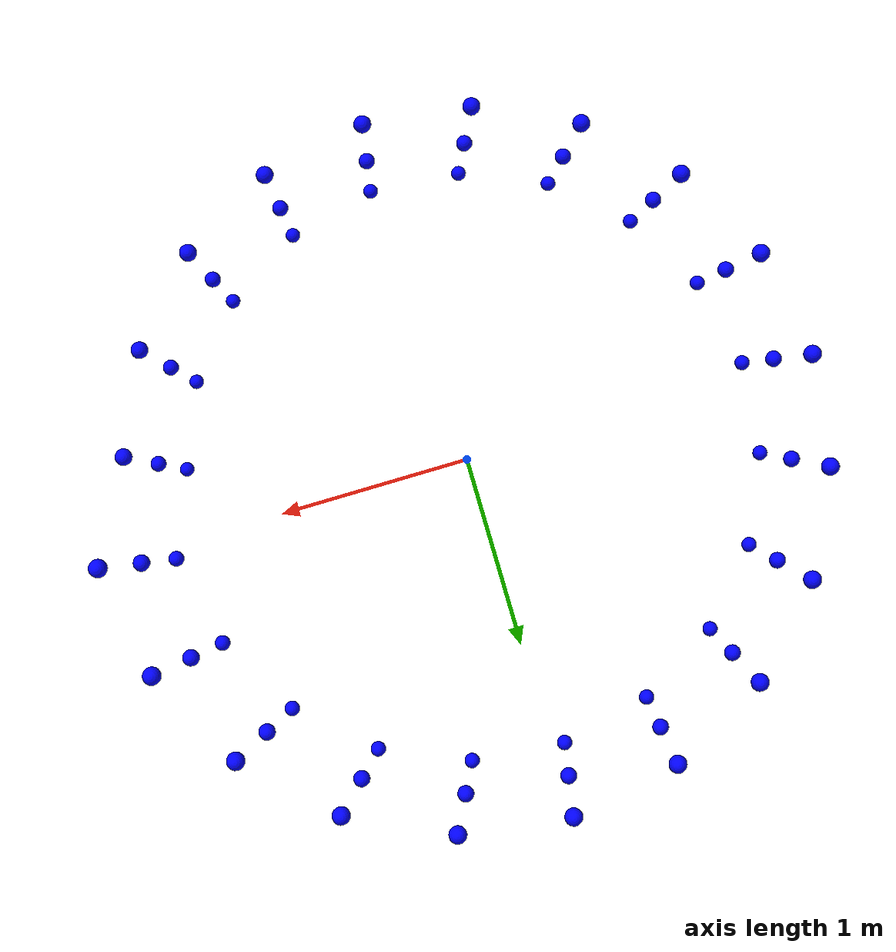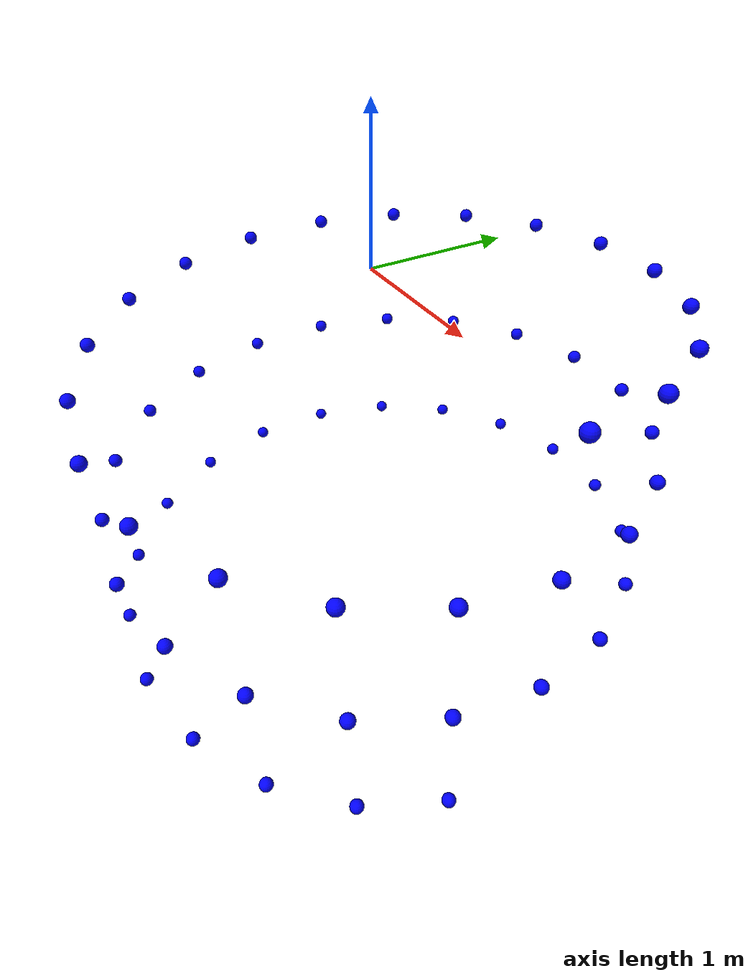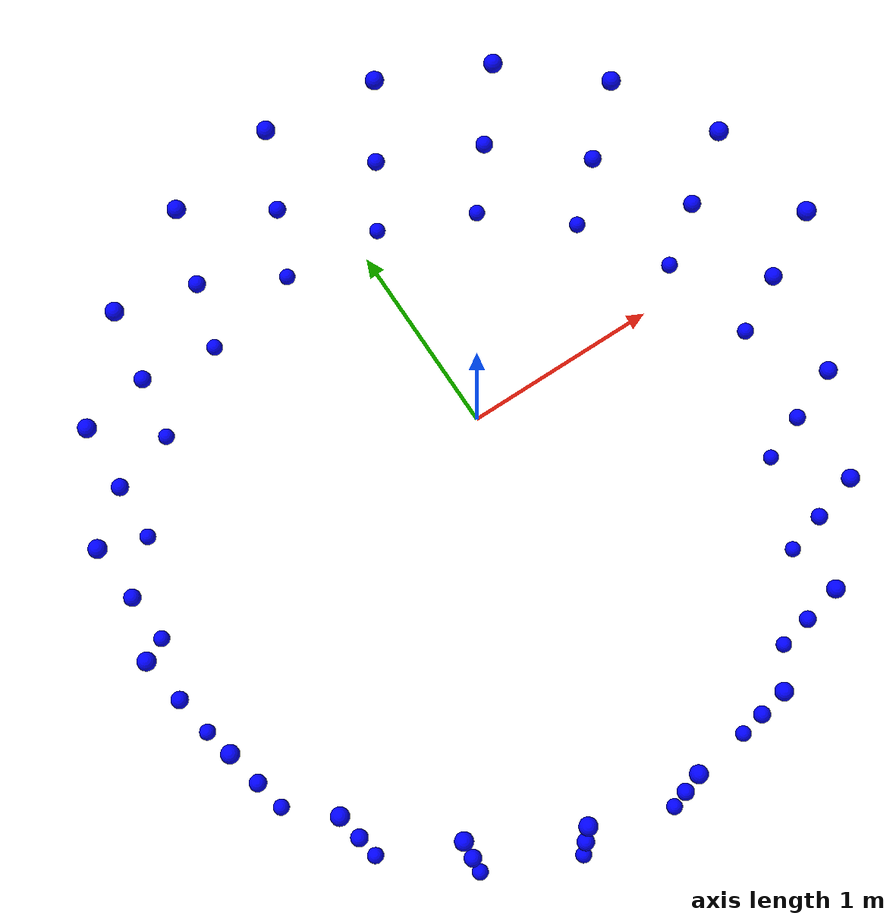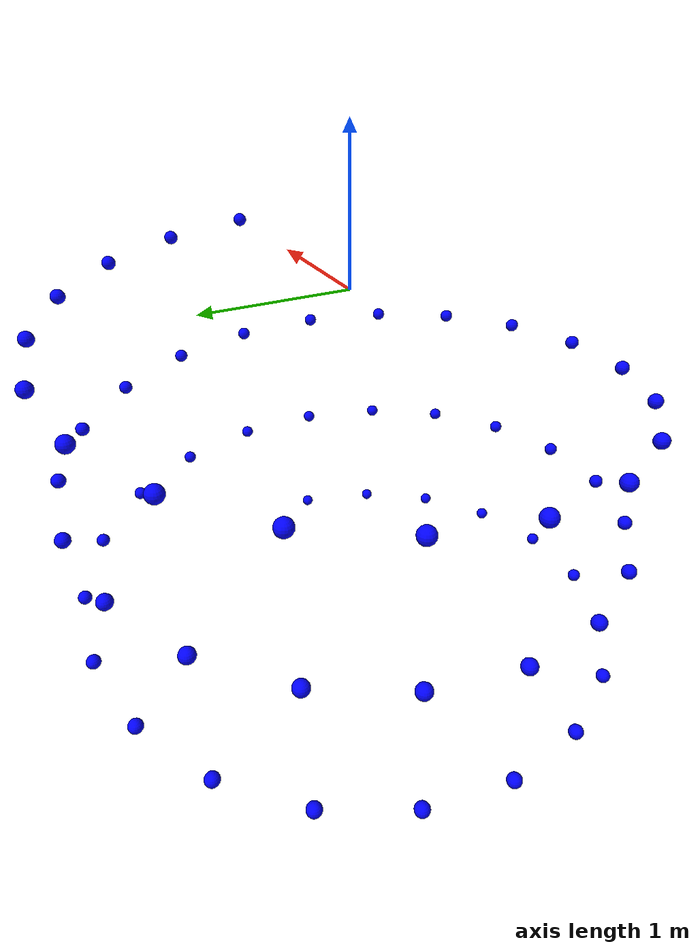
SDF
<sdf version="1.6">
  <world name="default">
    <model name="path_point_0">
      <static>true</static>
      <pose>2.0 0.0 0.0 0 0 1.5707963267948963</pose>
      <link name="link">
        <visual name="visual">
          <geometry>
            <sphere>
              <radius>0.05</radius>
            </sphere>
          </geometry>
          <material>
            <ambient>0 0 1 1</ambient>
            <diffuse>0 0 1 1</diffuse>
          </material>
        </visual>
      </link>
    </model>
    <model name="path_point_1">
      <static>true</static>
      <pose>1.901462614531411 0.6200321971796064 -0.05016722408026756 0 0 1.8860062920380198</pose>
      <link name="link">
        <visual name="visual">
          <geometry>
            <sphere>
              <radius>0.05</radius>
            </sphere>
          </geometry>
          <material>
            <ambient>0 0 1 1</ambient>
            <diffuse>0 0 1 1</diffuse>
          </material>
        </visual>
      </link>
    </model>
    <model name="path_point_2">
      <static>true</static>
      <pose>1.6155600744606295 1.1789680427427898 -0.10033444816053512 0 0 2.2012162572811427</pose>
      <link name="link">
        <visual name="visual">
          <geometry>
            <sphere>
              <radius>0.05</radius>
            </sphere>
          </geometry>
          <material>
            <ambient>0 0 1 1</ambient>
            <diffuse>0 0 1 1</diffuse>
          </material>
        </visual>
      </link>
    </model>
    <model name="path_point_3">
      <static>true</static>
      <pose>1.170464468585059 1.6217314598230792 -0.1505016722408027 0 0 2.5164262225242657</pose>
      <link name="link">
        <visual name="visual">
          <geometry>
            <sphere>
              <radius>0.05</radius>
            </sphere>
          </geometry>
          <material>
            <ambient>0 0 1 1</ambient>
            <diffuse>0 0 1 1</diffuse>
          </material>
        </visual>
      </link>
    </model>
    <model name="path_point_4">
      <static>true</static>
      <pose>0.6100343541912352 1.9046936989202443 -0.20066889632107024 0 0 2.831636187767389</pose>
      <link name="link">
        <visual name="visual">
          <geometry>
            <sphere>
              <radius>0.05</radius>
            </sphere>
          </geometry>
          <material>
            <ambient>0 0 1 1</ambient>
            <diffuse>0 0 1 1</diffuse>
          </material>
        </visual>
      </link>
    </model>
    <model name="path_point_5">
      <static>true</static>
      <pose>-0.010506950510611948 1.999972400807313 -0.2508361204013378 0 0 -3.1363391541690744</pose>
      <link name="link">
        <visual name="visual">
          <geometry>
            <sphere>
              <radius>0.05</radius>
            </sphere>
          </geometry>
          <material>
            <ambient>0 0 1 1</ambient>
            <diffuse>0 0 1 1</diffuse>
          </material>
        </visual>
      </link>
    </model>
    <model name="path_point_6">
      <static>true</static>
      <pose>-0.6300129277798956 1.8981790513094923 -0.3010033444816054 0 0 -2.8211291889259513</pose>
      <link name="link">
        <visual name="visual">
          <geometry>
            <sphere>
              <radius>0.05</radius>
            </sphere>
          </geometry>
          <material>
            <ambient>0 0 1 1</ambient>
            <diffuse>0 0 1 1</diffuse>
          </material>
        </visual>
      </link>
    </model>
    <model name="path_point_7">
      <static>true</static>
      <pose>-1.1874390783343374 1.6093441009443876 -0.3511705685618729 0 0 -2.5059192236828283</pose>
      <link name="link">
        <visual name="visual">
          <geometry>
            <sphere>
              <radius>0.05</radius>
            </sphere>
          </geometry>
          <material>
            <ambient>0 0 1 1</ambient>
            <diffuse>0 0 1 1</diffuse>
          </material>
        </visual>
      </link>
    </model>
    <model name="path_point_8">
      <static>true</static>
      <pose>-1.6278580867064827 1.1619285905529262 -0.4013377926421405 0 0 -2.190709258439705</pose>
      <link name="link">
        <visual name="visual">
          <geometry>
            <sphere>
              <radius>0.05</radius>
            </sphere>
          </geometry>
          <material>
            <ambient>0 0 1 1</ambient>
            <diffuse>0 0 1 1</diffuse>
          </material>
        </visual>
      </link>
    </model>
    <model name="path_point_9">
      <static>true</static>
      <pose>-1.9078722153006715 0.600019674747177 -0.451505016722408 0 0 -1.8754992931965824</pose>
      <link name="link">
        <visual name="visual">
          <geometry>
            <sphere>
              <radius>0.05</radius>
            </sphere>
          </geometry>
          <material>
            <ambient>0 0 1 1</ambient>
            <diffuse>0 0 1 1</diffuse>
          </material>
        </visual>
      </link>
    </model>
    <model name="path_point_10">
      <static>true</static>
      <pose>-1.9998896039909675 -0.0210136110378722 -0.5016722408026756 0 0 -1.5602893279534593</pose>
      <link name="link">
        <visual name="visual">
          <geometry>
            <sphere>
              <radius>0.05</radius>
            </sphere>
          </geometry>
          <material>
            <ambient>0 0 1 1</ambient>
            <diffuse>0 0 1 1</diffuse>
          </material>
        </visual>
      </link>
    </model>
    <model name="path_point_11">
      <static>true</static>
      <pose>-1.894843099878182 -0.6399762705319956 -0.5518394648829431 0 0 -1.2450793627103363</pose>
      <link name="link">
        <visual name="visual">
          <geometry>
            <sphere>
              <radius>0.05</radius>
            </sphere>
          </geometry>
          <material>
            <ambient>0 0 1 1</ambient>
            <diffuse>0 0 1 1</diffuse>
          </material>
        </visual>
      </link>
    </model>
    <model name="path_point_12">
      <static>true</static>
      <pose>-1.603083710830204 -1.1958773415659578 -0.6020066889632107 0 0 -0.9298693974672132</pose>
      <link name="link">
        <visual name="visual">
          <geometry>
            <sphere>
              <radius>0.05</radius>
            </sphere>
          </geometry>
          <material>
            <ambient>0 0 1 1</ambient>
            <diffuse>0 0 1 1</diffuse>
          </material>
        </visual>
      </link>
    </model>
    <model name="path_point_13">
      <static>true</static>
      <pose>-1.1533606442297344 -1.633939786020884 -0.6521739130434783 0 0 -0.61465943222409</pose>
      <link name="link">
        <visual name="visual">
          <geometry>
            <sphere>
              <radius>0.05</radius>
            </sphere>
          </geometry>
          <material>
            <ambient>0 0 1 1</ambient>
            <diffuse>0 0 1 1</diffuse>
          </material>
        </visual>
      </link>
    </model>
    <model name="path_point_14">
      <static>true</static>
      <pose>-0.5899884352444995 -1.9109980759482064 -0.7023411371237458 0 0 -0.29944946698096714</pose>
      <link name="link">
        <visual name="visual">
          <geometry>
            <sphere>
              <radius>0.05</radius>
            </sphere>
          </geometry>
          <material>
            <ambient>0 0 1 1</ambient>
            <diffuse>0 0 1 1</diffuse>
          </material>
        </visual>
      </link>
    </model>
    <model name="path_point_15">
      <static>true</static>
      <pose>0.03151969160643237 -1.999751611836089 -0.7525083612040134 0 0 0.015760498262156013</pose>
      <link name="link">
        <visual name="visual">
          <geometry>
            <sphere>
              <radius>0.05</radius>
            </sphere>
          </geometry>
          <material>
            <ambient>0 0 1 1</ambient>
            <diffuse>0 0 1 1</diffuse>
          </material>
        </visual>
      </link>
    </model>
    <model name="path_point_16">
      <static>true</static>
      <pose>0.6499219504556901 -1.8914548523070467 -0.802675585284281 0 0 0.33097046350527903</pose>
      <link name="link">
        <visual name="visual">
          <geometry>
            <sphere>
              <radius>0.05</radius>
            </sphere>
          </geometry>
          <material>
            <ambient>0 0 1 1</ambient>
            <diffuse>0 0 1 1</diffuse>
          </material>
        </visual>
      </link>
    </model>
    <model name="path_point_17">
      <static>true</static>
      <pose>1.2042825995483983 -1.596779076899792 -0.8528428093645485 0 0 0.6461804287484021</pose>
      <link name="link">
        <visual name="visual">
          <geometry>
            <sphere>
              <radius>0.05</radius>
            </sphere>
          </geometry>
          <material>
            <ambient>0 0 1 1</ambient>
            <diffuse>0 0 1 1</diffuse>
          </material>
        </visual>
      </link>
    </model>
    <model name="path_point_18">
      <static>true</static>
      <pose>1.639976389916292 -1.144760866083885 -0.903010033444816 0 0 0.9613903939915251</pose>
      <link name="link">
        <visual name="visual">
          <geometry>
            <sphere>
              <radius>0.05</radius>
            </sphere>
          </geometry>
          <material>
            <ambient>0 0 1 1</ambient>
            <diffuse>0 0 1 1</diffuse>
          </material>
        </visual>
      </link>
    </model>
    <model name="path_point_19">
      <static>true</static>
      <pose>1.914071194591619 -0.5799409125373145 -0.9531772575250836 0 0 1.2766003592346482</pose>
      <link name="link">
        <visual name="visual">
          <geometry>
            <sphere>
              <radius>0.05</radius>
            </sphere>
          </geometry>
          <material>
            <ambient>0 0 1 1</ambient>
            <diffuse>0 0 1 1</diffuse>
          </material>
        </visual>
      </link>
    </model>
    <model name="path_point_20">
      <static>true</static>
      <pose>1.999558428151149 0.042024902256950464 -1.0033444816053512 0 0 1.591810324477771</pose>
      <link name="link">
        <visual name="visual">
          <geometry>
            <sphere>
              <radius>0.05</radius>
            </sphere>
          </geometry>
          <material>
            <ambient>0 0 1 1</ambient>
            <diffuse>0 0 1 1</diffuse>
          </material>
        </visual>
      </link>
    </model>
    <model name="path_point_21">
      <static>true</static>
      <pose>1.8880144021089837 0.6598496930582426 -1.0535117056856187 0 0 1.9070202897208943</pose>
      <link name="link">
        <visual name="visual">
          <geometry>
            <sphere>
              <radius>0.05</radius>
            </sphere>
          </geometry>
          <material>
            <ambient>0 0 1 1</ambient>
            <diffuse>0 0 1 1</diffuse>
          </material>
        </visual>
      </link>
    </model>
    <model name="path_point_22">
      <static>true</static>
      <pose>1.590430373155958 1.2126546203033246 -1.1036789297658862 0 0 2.2222302549640176</pose>
      <link name="link">
        <visual name="visual">
          <geometry>
            <sphere>
              <radius>0.05</radius>
            </sphere>
          </geometry>
          <material>
            <ambient>0 0 1 1</ambient>
            <diffuse>0 0 1 1</diffuse>
          </material>
        </visual>
      </link>
    </model>
    <model name="path_point_23">
      <static>true</static>
      <pose>1.136129493462312 1.6459677317873125 -1.153846153846154 0 0 2.53744022020714</pose>
      <link name="link">
        <visual name="visual">
          <geometry>
            <sphere>
              <radius>0.05</radius>
            </sphere>
          </geometry>
          <material>
            <ambient>0 0 1 1</ambient>
            <diffuse>0 0 1 1</diffuse>
          </material>
        </visual>
      </link>
    </model>
    <model name="path_point_24">
      <static>true</static>
      <pose>0.5698773839291374 1.9170914864153152 -1.2040133779264215 0 0 2.8526501854502637</pose>
      <link name="link">
        <visual name="visual">
          <geometry>
            <sphere>
              <radius>0.05</radius>
            </sphere>
          </geometry>
          <material>
            <ambient>0 0 1 1</ambient>
            <diffuse>0 0 1 1</diffuse>
          </material>
        </visual>
      </link>
    </model>
    <model name="path_point_25">
      <static>true</static>
      <pose>-0.05252895305409351 1.9993100582678618 -1.254180602006689 0 0 -3.1153251564862</pose>
      <link name="link">
        <visual name="visual">
          <geometry>
            <sphere>
              <radius>0.05</radius>
            </sphere>
          </geometry>
          <material>
            <ambient>0 0 1 1</ambient>
            <diffuse>0 0 1 1</diffuse>
          </material>
        </visual>
      </link>
    </model>
    <model name="path_point_26">
      <static>true</static>
      <pose>-0.6697592243419719 1.8845218442376412 -1.3043478260869565 0 0 -2.800115191243077</pose>
      <link name="link">
        <visual name="visual">
          <geometry>
            <sphere>
              <radius>0.05</radius>
            </sphere>
          </geometry>
          <material>
            <ambient>0 0 1 1</ambient>
            <diffuse>0 0 1 1</diffuse>
          </material>
        </visual>
      </link>
    </model>
    <model name="path_point_27">
      <static>true</static>
      <pose>-1.2209931727697207 1.5840377748178012 -1.3545150501672238 0 0 -2.4849052259999547</pose>
      <link name="link">
        <visual name="visual">
          <geometry>
            <sphere>
              <radius>0.05</radius>
            </sphere>
          </geometry>
          <material>
            <ambient>0 0 1 1</ambient>
            <diffuse>0 0 1 1</diffuse>
          </material>
        </visual>
      </link>
    </model>
    <model name="path_point_28">
      <static>true</static>
      <pose>-1.651913646277747 1.1274667645839316 -1.4046822742474916 0 0 -2.1696952607568307</pose>
      <link name="link">
        <visual name="visual">
          <geometry>
            <sphere>
              <radius>0.05</radius>
            </sphere>
          </geometry>
          <material>
            <ambient>0 0 1 1</ambient>
            <diffuse>0 0 1 1</diffuse>
          </material>
        </visual>
      </link>
    </model>
    <model name="path_point_29">
      <static>true</static>
      <pose>-1.9200588680616788 0.559798127165235 -1.4548494983277591 0 0 -1.8544852955137088</pose>
      <link name="link">
        <visual name="visual">
          <geometry>
            <sphere>
              <radius>0.05</radius>
            </sphere>
          </geometry>
          <material>
            <ambient>0 0 1 1</ambient>
            <diffuse>0 0 1 1</diffuse>
          </material>
        </visual>
      </link>
    </model>
    <model name="path_point_30">
      <static>true</static>
      <pose>-1.9990065090410354 -0.06303155409453957 -1.5050167224080269 0 0 -1.5392753302705844</pose>
      <link name="link">
        <visual name="visual">
          <geometry>
            <sphere>
              <radius>0.05</radius>
            </sphere>
          </geometry>
          <material>
            <ambient>0 0 1 1</ambient>
            <diffuse>0 0 1 1</diffuse>
          </material>
        </visual>
      </link>
    </model>
    <model name="path_point_31">
      <static>true</static>
      <pose>-1.8809772750847973 -0.679650270811813 -1.5551839464882942 0 0 -1.2240653650274624</pose>
      <link name="link">
        <visual name="visual">
          <geometry>
            <sphere>
              <radius>0.05</radius>
            </sphere>
          </geometry>
          <material>
            <ambient>0 0 1 1</ambient>
            <diffuse>0 0 1 1</diffuse>
          </material>
        </visual>
      </link>
    </model>
    <model name="path_point_32">
      <static>true</static>
      <pose>-1.5776014583158715 -1.2292980268102751 -1.605351170568562 0 0 -0.9088553997843386</pose>
      <link name="link">
        <visual name="visual">
          <geometry>
            <sphere>
              <radius>0.05</radius>
            </sphere>
          </geometry>
          <material>
            <ambient>0 0 1 1</ambient>
            <diffuse>0 0 1 1</diffuse>
          </material>
        </visual>
      </link>
    </model>
    <model name="path_point_33">
      <static>true</static>
      <pose>-1.1187729185330686 -1.6578139692851548 -1.6555183946488292 0 0 -0.5936454345412163</pose>
      <link name="link">
        <visual name="visual">
          <geometry>
            <sphere>
              <radius>0.05</radius>
            </sphere>
          </geometry>
          <material>
            <ambient>0 0 1 1</ambient>
            <diffuse>0 0 1 1</diffuse>
          </material>
        </visual>
      </link>
    </model>
    <model name="path_point_34">
      <static>true</static>
      <pose>-0.5497034204249518 -1.9229732576333736 -1.705685618729097 0 0 -0.2784354692980924</pose>
      <link name="link">
        <visual name="visual">
          <geometry>
            <sphere>
              <radius>0.05</radius>
            </sphere>
          </geometry>
          <material>
            <ambient>0 0 1 1</ambient>
            <diffuse>0 0 1 1</diffuse>
          </material>
        </visual>
      </link>
    </model>
    <model name="path_point_35">
      <static>true</static>
      <pose>0.07353241551497705 -1.9986477888483836 -1.7558528428093645 0 0 0.03677449594502981</pose>
      <link name="link">
        <visual name="visual">
          <geometry>
            <sphere>
              <radius>0.05</radius>
            </sphere>
          </geometry>
          <material>
            <ambient>0 0 1 1</ambient>
            <diffuse>0 0 1 1</diffuse>
          </material>
        </visual>
      </link>
    </model>
    <model name="path_point_36">
      <static>true</static>
      <pose>0.6895225594828736 -1.8773807924776975 -1.806020066889632 0 0 0.3519844611881537</pose>
      <link name="link">
        <visual name="visual">
          <geometry>
            <sphere>
              <radius>0.05</radius>
            </sphere>
          </geometry>
          <material>
            <ambient>0 0 1 1</ambient>
            <diffuse>0 0 1 1</diffuse>
          </material>
        </visual>
      </link>
    </model>
    <model name="path_point_37">
      <static>true</static>
      <pose>1.237568953217715 -1.5711216012873126 -1.8561872909698995 0 0 0.667194426431276</pose>
      <link name="link">
        <visual name="visual">
          <geometry>
            <sphere>
              <radius>0.05</radius>
            </sphere>
          </geometry>
          <material>
            <ambient>0 0 1 1</ambient>
            <diffuse>0 0 1 1</diffuse>
          </material>
        </visual>
      </link>
    </model>
    <model name="path_point_38">
      <static>true</static>
      <pose>1.6636685379653868 -1.1100481952528511 -1.9063545150501673 0 0 0.9824043916743997</pose>
      <link name="link">
        <visual name="visual">
          <geometry>
            <sphere>
              <radius>0.05</radius>
            </sphere>
          </geometry>
          <material>
            <ambient>0 0 1 1</ambient>
            <diffuse>0 0 1 1</diffuse>
          </material>
        </visual>
      </link>
    </model>
    <model name="path_point_39">
      <static>true</static>
      <pose>1.9258345746955978 -0.539593542314051 -1.9565217391304346 0 0 1.297614356917522</pose>
      <link name="link">
        <visual name="visual">
          <geometry>
            <sphere>
              <radius>0.05</radius>
            </sphere>
          </geometry>
          <material>
            <ambient>0 0 1 1</ambient>
            <diffuse>0 0 1 1</diffuse>
          </material>
        </visual>
      </link>
    </model>
    <model name="path_point_40">
      <static>true</static>
      <pose>1.9982339075902937 0.08403124750011354 -2.0066889632107023 0 0 1.6128243221606458</pose>
      <link name="link">
        <visual name="visual">
          <geometry>
            <sphere>
              <radius>0.05</radius>
            </sphere>
          </geometry>
          <material>
            <ambient>0 0 1 1</ambient>
            <diffuse>0 0 1 1</diffuse>
          </material>
        </visual>
      </link>
    </model>
    <model name="path_point_41">
      <static>true</static>
      <pose>1.8737324956763604 0.6993758178879496 -2.0568561872909696 0 0 1.9280342874037681</pose>
      <link name="link">
        <visual name="visual">
          <geometry>
            <sphere>
              <radius>0.05</radius>
            </sphere>
          </geometry>
          <material>
            <ambient>0 0 1 1</ambient>
            <diffuse>0 0 1 1</diffuse>
          </material>
        </visual>
      </link>
    </model>
    <model name="path_point_42">
      <static>true</static>
      <pose>1.564598382570943 1.2458057237211542 -2.1070234113712374 0 0 2.243244252646892</pose>
      <link name="link">
        <visual name="visual">
          <geometry>
            <sphere>
              <radius>0.05</radius>
            </sphere>
          </geometry>
          <material>
            <ambient>0 0 1 1</ambient>
            <diffuse>0 0 1 1</diffuse>
          </material>
        </visual>
      </link>
    </model>
    <model name="path_point_43">
      <static>true</static>
      <pose>1.1012928355386042 1.6694771907370705 -2.1571906354515047 0 0 2.5584542178900143</pose>
      <link name="link">
        <visual name="visual">
          <geometry>
            <sphere>
              <radius>0.05</radius>
            </sphere>
          </geometry>
          <material>
            <ambient>0 0 1 1</ambient>
            <diffuse>0 0 1 1</diffuse>
          </material>
        </visual>
      </link>
    </model>
    <model name="path_point_44">
      <static>true</static>
      <pose>0.5294687718569997 1.928642740278313 -2.2073578595317724 0 0 2.873664183133138</pose>
      <link name="link">
        <visual name="visual">
          <geometry>
            <sphere>
              <radius>0.05</radius>
            </sphere>
          </geometry>
          <material>
            <ambient>0 0 1 1</ambient>
            <diffuse>0 0 1 1</diffuse>
          </material>
        </visual>
      </link>
    </model>
    <model name="path_point_45">
      <static>true</static>
      <pose>-0.094527760290655 1.9977648766895548 -2.25752508361204 0 0 -3.0943111588033263</pose>
      <link name="link">
        <visual name="visual">
          <geometry>
            <sphere>
              <radius>0.05</radius>
            </sphere>
          </geometry>
          <material>
            <ambient>0 0 1 1</ambient>
            <diffuse>0 0 1 1</diffuse>
          </material>
        </visual>
      </link>
    </model>
    <model name="path_point_46">
      <static>true</static>
      <pose>-0.7092097740850705 1.8700324853708299 -2.307692307692308 0 0 -2.779101193560202</pose>
      <link name="link">
        <visual name="visual">
          <geometry>
            <sphere>
              <radius>0.05</radius>
            </sphere>
          </geometry>
          <material>
            <ambient>0 0 1 1</ambient>
            <diffuse>0 0 1 1</diffuse>
          </material>
        </visual>
      </link>
    </model>
    <model name="path_point_47">
      <static>true</static>
      <pose>-1.2540081109923713 1.5580319822023374 -2.3578595317725752 0 0 -2.46389122831708</pose>
      <link name="link">
        <visual name="visual">
          <geometry>
            <sphere>
              <radius>0.05</radius>
            </sphere>
          </geometry>
          <material>
            <ambient>0 0 1 1</ambient>
            <diffuse>0 0 1 1</diffuse>
          </material>
        </visual>
      </link>
    </model>
    <model name="path_point_48">
      <static>true</static>
      <pose>-1.6752397672860824 1.0925070810311814 -2.408026755852843 0 0 -2.1486812630739562</pose>
      <link name="link">
        <visual name="visual">
          <geometry>
            <sphere>
              <radius>0.05</radius>
            </sphere>
          </geometry>
          <material>
            <ambient>0 0 1 1</ambient>
            <diffuse>0 0 1 1</diffuse>
          </material>
        </visual>
      </link>
    </model>
    <model name="path_point_49">
      <static>true</static>
      <pose>-1.931397676878414 0.5193293884892957 -2.4581939799331103 0 0 -1.8334712978308338</pose>
      <link name="link">
        <visual name="visual">
          <geometry>
            <sphere>
              <radius>0.05</radius>
            </sphere>
          </geometry>
          <material>
            <ambient>0 0 1 1</ambient>
            <diffuse>0 0 1 1</diffuse>
          </material>
        </visual>
      </link>
    </model>
    <model name="path_point_50">
      <static>true</static>
      <pose>-1.997240709091041 -0.10502166419132947 -2.508361204013378 0 0 -1.5182613325877097</pose>
      <link name="link">
        <visual name="visual">
          <geometry>
            <sphere>
              <radius>0.05</radius>
            </sphere>
          </geometry>
          <material>
            <ambient>0 0 1 1</ambient>
            <diffuse>0 0 1 1</diffuse>
          </material>
        </visual>
      </link>
    </model>
    <model name="path_point_51">
      <static>true</static>
      <pose>-1.8662808636784063 -0.7190241566649775 -2.5585284280936453 0 0 -1.2030513673445875</pose>
      <link name="link">
        <visual name="visual">
          <geometry>
            <sphere>
              <radius>0.05</radius>
            </sphere>
          </geometry>
          <material>
            <ambient>0 0 1 1</ambient>
            <diffuse>0 0 1 1</diffuse>
          </material>
        </visual>
      </link>
    </model>
    <model name="path_point_52">
      <static>true</static>
      <pose>-1.5514225814088403 -1.2621758886521048 -2.608695652173913 0 0 -0.8878414021014638</pose>
      <link name="link">
        <visual name="visual">
          <geometry>
            <sphere>
              <radius>0.05</radius>
            </sphere>
          </geometry>
          <material>
            <ambient>0 0 1 1</ambient>
            <diffuse>0 0 1 1</diffuse>
          </material>
        </visual>
      </link>
    </model>
    <model name="path_point_53">
      <static>true</static>
      <pose>-1.0836911742103172 -1.6809561085699603 -2.658862876254181 0 0 -0.5726314368583398</pose>
      <link name="link">
        <visual name="visual">
          <geometry>
            <sphere>
              <radius>0.05</radius>
            </sphere>
          </geometry>
          <material>
            <ambient>0 0 1 1</ambient>
            <diffuse>0 0 1 1</diffuse>
          </material>
        </visual>
      </link>
    </model>
    <model name="path_point_54">
      <static>true</static>
      <pose>-0.5091756720497308 -1.9340993084618754 -2.7090301003344477 0 0 -0.2574214716152195</pose>
      <link name="link">
        <visual name="visual">
          <geometry>
            <sphere>
              <radius>0.05</radius>
            </sphere>
          </geometry>
          <material>
            <ambient>0 0 1 1</ambient>
            <diffuse>0 0 1 1</diffuse>
          </material>
        </visual>
      </link>
    </model>
    <model name="path_point_55">
      <static>true</static>
      <pose>0.11551266957885407 -1.9966614192613545 -2.7591973244147154 0 0 0.05778849362790448</pose>
      <link name="link">
        <visual name="visual">
          <geometry>
            <sphere>
              <radius>0.05</radius>
            </sphere>
          </geometry>
          <material>
            <ambient>0 0 1 1</ambient>
            <diffuse>0 0 1 1</diffuse>
          </material>
        </visual>
      </link>
    </model>
    <model name="path_point_56">
      <static>true</static>
      <pose>0.7288186947586416 -1.8624777341408165 -2.809364548494983 0 0 0.37299845887102845</pose>
      <link name="link">
        <visual name="visual">
          <geometry>
            <sphere>
              <radius>0.05</radius>
            </sphere>
          </geometry>
          <material>
            <ambient>0 0 1 1</ambient>
            <diffuse>0 0 1 1</diffuse>
          </material>
        </visual>
      </link>
    </model>
    <model name="path_point_57">
      <static>true</static>
      <pose>1.2703088312762827 -1.54477036260458 -2.859531772575251 0 0 0.6882084241141524</pose>
      <link name="link">
        <visual name="visual">
          <geometry>
            <sphere>
              <radius>0.05</radius>
            </sphere>
          </geometry>
          <material>
            <ambient>0 0 1 1</ambient>
            <diffuse>0 0 1 1</diffuse>
          </material>
        </visual>
      </link>
    </model>
    <model name="path_point_58">
      <static>true</static>
      <pose>1.6866260568222953 -1.074845358387929 -2.9096989966555182 0 0 1.0034183893572728</pose>
      <link name="link">
        <visual name="visual">
          <geometry>
            <sphere>
              <radius>0.05</radius>
            </sphere>
          </geometry>
          <material>
            <ambient>0 0 1 1</ambient>
            <diffuse>0 0 1 1</diffuse>
          </material>
        </visual>
      </link>
    </model>
    <model name="path_point_59">
      <static>true</static>
      <pose>1.936747560465848 -0.499007902772678 -2.959866220735786 0 0 1.3186283546003967</pose>
      <link name="link">
        <visual name="visual">
          <geometry>
            <sphere>
              <radius>0.05</radius>
            </sphere>
          </geometry>
          <material>
            <ambient>0 0 1 1</ambient>
            <diffuse>0 0 1 1</diffuse>
          </material>
        </visual>
      </link>
    </model>
  </world>
</sdf>
